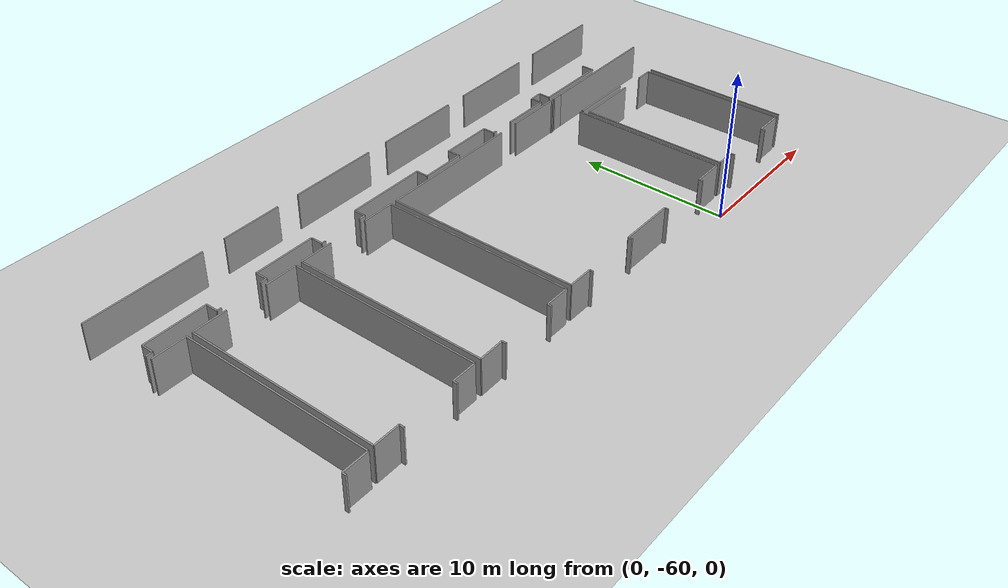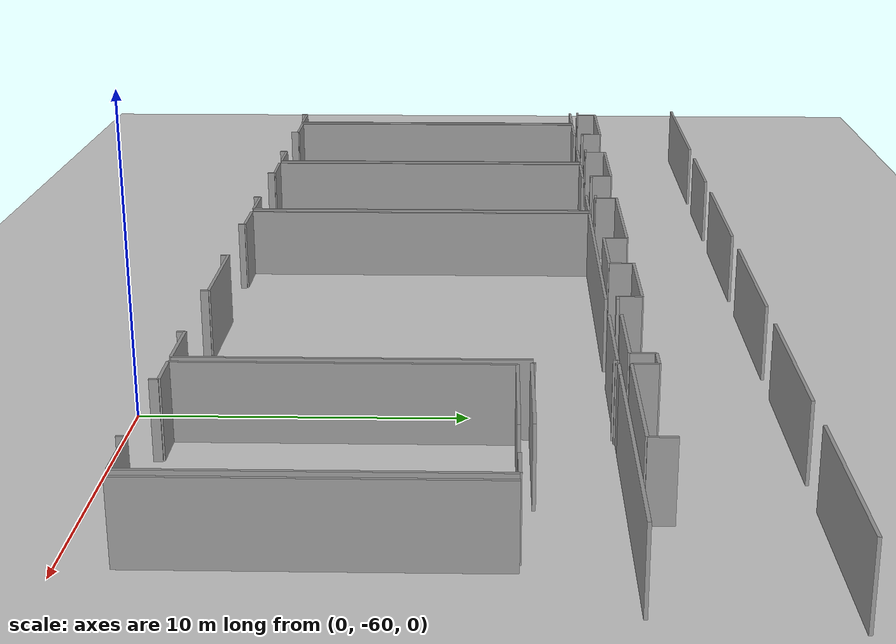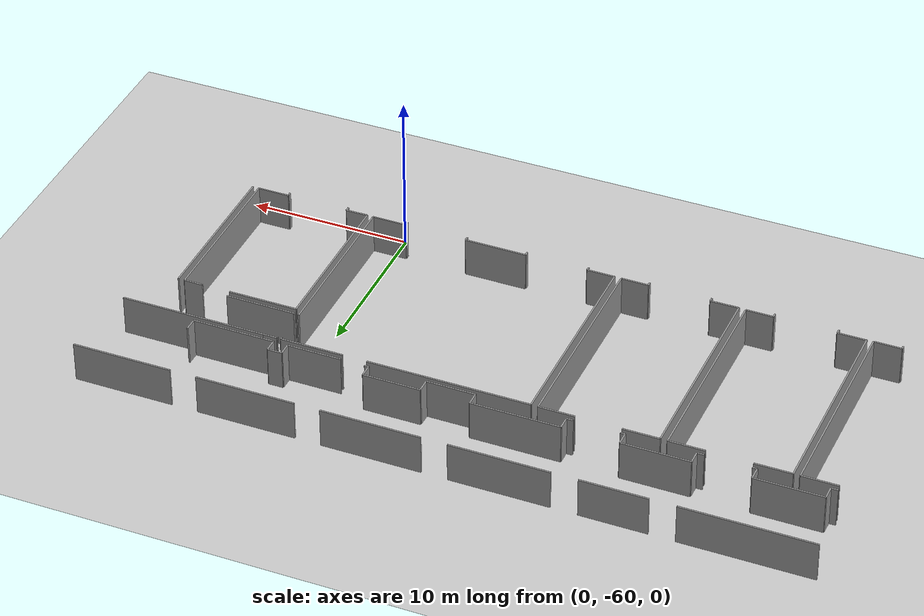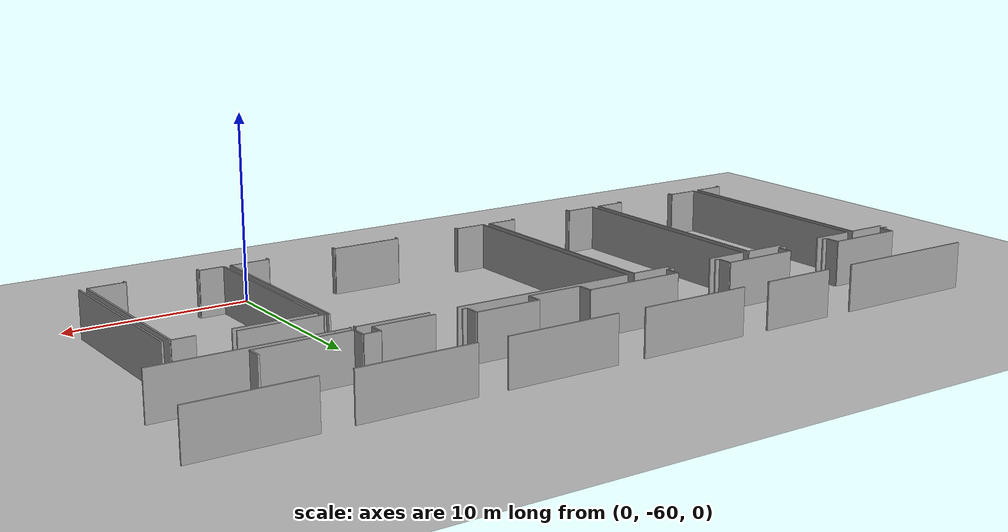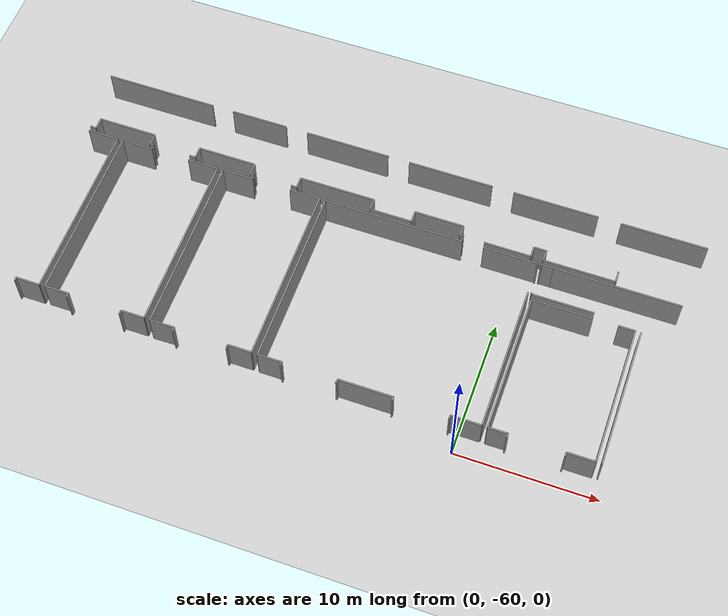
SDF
<sdf version="1.6">
 <world name="default">
  <model name="ground_plane">
   <static>1</static>
   <link name="link">
    <collision name="collision">
     <geometry><plane><normal>0 0 1</normal><size>100 100</size></plane></geometry>
     <surface><friction><ode><mu>100</mu><mu2>50</mu2></ode></friction></surface>
    </collision>
    <visual name="visual">
     <cast_shadows>0</cast_shadows>
     <geometry><plane><normal>0 0 1</normal><size>100 100</size></plane></geometry>
     <material>
      <script><uri>file://media/materials/scripts/gazebo.material</uri><name>Gazebo/Grey</name></script>
     </material>
    </visual>
   </link>
  </model>
  <model name="0510035520_A_40_1_103">
   <static>1</static>
   <link name="Wall_683">
    <collision name="Wall_683_Collision">
     <geometry><box><size>10.0286165697 0.1 2.5</size></box></geometry>
     <pose>5.01430828485 0 1.25 0 0 0</pose>
    </collision>
    <visual name="Wall_683_Visual">
     <pose>5.01430828485 0 1.25 0 0 0</pose>
     <geometry><box><size>10.0286165697 0.1 2.5</size></box></geometry>
     <material>
      <script><uri>file://media/materials/scripts/gazebo.material</uri><name>Gazebo/Grey</name></script>
      <ambient>1 1 1 1</ambient>
     </material>
    </visual>
    <pose>121.647451476 -127.235233279 0 0 0 1.57079632679</pose>
   </link>
   <link name="Wall_692">
    <collision name="Wall_692_Collision">
     <geometry><box><size>10.0169415169 0.1 2.5</size></box></geometry>
     <pose>5.00847075843 0 1.25 0 0 0</pose>
    </collision>
    <visual name="Wall_692_Visual">
     <pose>5.00847075843 0 1.25 0 0 0</pose>
     <geometry><box><size>10.0169415169 0.1 2.5</size></box></geometry>
     <material>
      <script><uri>file://media/materials/scripts/gazebo.material</uri><name>Gazebo/Grey</name></script>
      <ambient>1 1 1 1</ambient>
     </material>
    </visual>
    <pose>114.058413335 -127.230918586 0 0 0 1.57079632679</pose>
   </link>
   <link name="Wall_693">
    <collision name="Wall_693_Collision">
     <geometry><box><size>4.28931288507 0.1 2.5</size></box></geometry>
     <pose>2.14465644254 0 1.25 0 0 0</pose>
    </collision>
    <visual name="Wall_693_Visual">
     <pose>2.14465644254 0 1.25 0 0 0</pose>
     <geometry><box><size>4.28931288507 0.1 2.5</size></box></geometry>
     <material>
      <script><uri>file://media/materials/scripts/gazebo.material</uri><name>Gazebo/Grey</name></script>
      <ambient>1 1 1 1</ambient>
     </material>
    </visual>
    <pose>114.058413335 -117.213977069 0 0 0 0.0</pose>
   </link>
   <link name="Wall_694">
    <collision name="Wall_694_Collision">
     <geometry><box><size>1.17004333729 0.1 2.5</size></box></geometry>
     <pose>0.585021668644 0 1.25 0 0 0</pose>
    </collision>
    <visual name="Wall_694_Visual">
     <pose>0.585021668644 0 1.25 0 0 0</pose>
     <geometry><box><size>1.17004333729 0.1 2.5</size></box></geometry>
     <material>
      <script><uri>file://media/materials/scripts/gazebo.material</uri><name>Gazebo/Grey</name></script>
      <ambient>1 1 1 1</ambient>
     </material>
    </visual>
    <pose>120.084771036 -117.213977069 0 0 0 0.0</pose>
   </link>
   <link name="Wall_695">
    <collision name="Wall_695_Collision">
     <geometry><box><size>10.0169415169 0.1 2.5</size></box></geometry>
     <pose>5.00847075843 0 1.25 0 0 0</pose>
    </collision>
    <visual name="Wall_695_Visual">
     <pose>5.00847075843 0 1.25 0 0 0</pose>
     <geometry><box><size>10.0169415169 0.1 2.5</size></box></geometry>
     <material>
      <script><uri>file://media/materials/scripts/gazebo.material</uri><name>Gazebo/Grey</name></script>
      <ambient>1 1 1 1</ambient>
     </material>
    </visual>
    <pose>121.254814373 -117.213977069 0 0 0 -1.57079632679</pose>
   </link>
   <link name="Wall_696">
    <collision name="Wall_696_Collision">
     <geometry><box><size>1.96470834576 0.1 2.5</size></box></geometry>
     <pose>0.98235417288 0 1.25 0 0 0</pose>
    </collision>
    <visual name="Wall_696_Visual">
     <pose>0.98235417288 0 1.25 0 0 0</pose>
     <geometry><box><size>1.96470834576 0.1 2.5</size></box></geometry>
     <material>
      <script><uri>file://media/materials/scripts/gazebo.material</uri><name>Gazebo/Grey</name></script>
      <ambient>1 1 1 1</ambient>
     </material>
    </visual>
    <pose>121.254814373 -127.230918586 0 0 0 3.14159265359</pose>
   </link>
   <link name="Wall_697">
    <collision name="Wall_697_Collision">
     <geometry><box><size>0.261927272035 0.1 2.5</size></box></geometry>
     <pose>0.130963636018 0 1.25 0 0 0</pose>
    </collision>
    <visual name="Wall_697_Visual">
     <pose>0.130963636018 0 1.25 0 0 0</pose>
     <geometry><box><size>0.261927272035 0.1 2.5</size></box></geometry>
     <material>
      <script><uri>file://media/materials/scripts/gazebo.material</uri><name>Gazebo/Grey</name></script>
      <ambient>1 1 1 1</ambient>
     </material>
    </visual>
    <pose>119.290106027 -127.230918586 0 0 0 -1.57079632679</pose>
   </link>
   <link name="Wall_698">
    <collision name="Wall_698_Collision">
     <geometry><box><size>0.278170823789 0.1 2.5</size></box></geometry>
     <pose>0.139085411895 0 1.25 0 0 0</pose>
    </collision>
    <visual name="Wall_698_Visual">
     <pose>0.139085411895 0 1.25 0 0 0</pose>
     <geometry><box><size>0.278170823789 0.1 2.5</size></box></geometry>
     <material>
      <script><uri>file://media/materials/scripts/gazebo.material</uri><name>Gazebo/Grey</name></script>
      <ambient>1 1 1 1</ambient>
     </material>
    </visual>
    <pose>115.41678035 -127.492845858 0 0 0 1.57079632679</pose>
   </link>
   <link name="Wall_699">
    <collision name="Wall_699_Collision">
     <geometry><box><size>1.35846413335 0.1 2.5</size></box></geometry>
     <pose>0.679232066676 0 1.25 0 0 0</pose>
    </collision>
    <visual name="Wall_699_Visual">
     <pose>0.679232066676 0 1.25 0 0 0</pose>
     <geometry><box><size>1.35846413335 0.1 2.5</size></box></geometry>
     <material>
      <script><uri>file://media/materials/scripts/gazebo.material</uri><name>Gazebo/Grey</name></script>
      <ambient>1 1 1 1</ambient>
     </material>
    </visual>
    <pose>115.41678035 -127.214675034 0 0 0 -3.12963507705</pose>
   </link>
   <link name="Wall_700">
    <collision name="Wall_700_Collision">
     <geometry><box><size>9.00527280918 0.1 2.5</size></box></geometry>
     <pose>4.50263640459 0 1.25 0 0 0</pose>
    </collision>
    <visual name="Wall_700_Visual">
     <pose>4.50263640459 0 1.25 0 0 0</pose>
     <geometry><box><size>9.00527280918 0.1 2.5</size></box></geometry>
     <material>
      <script><uri>file://media/materials/scripts/gazebo.material</uri><name>Gazebo/Grey</name></script>
      <ambient>1 1 1 1</ambient>
     </material>
    </visual>
    <pose>114.766530669 -114.326685744 0 0 0 0.0</pose>
   </link>
   <link name="Wall_705">
    <collision name="Wall_705_Collision">
     <geometry><box><size>4.37433772628 0.1 2.5</size></box></geometry>
     <pose>2.18716886314 0 1.25 0 0 0</pose>
    </collision>
    <visual name="Wall_705_Visual">
     <pose>2.18716886314 0 1.25 0 0 0</pose>
     <geometry><box><size>4.37433772628 0.1 2.5</size></box></geometry>
     <material>
      <script><uri>file://media/materials/scripts/gazebo.material</uri><name>Gazebo/Grey</name></script>
      <ambient>1 1 1 1</ambient>
     </material>
    </visual>
    <pose>118.30940159 -116.802812165 0 0 0 3.14159265359</pose>
   </link>
   <link name="Wall_706">
    <collision name="Wall_706_Collision">
     <geometry><box><size>0.108374946859 0.1 2.5</size></box></geometry>
     <pose>0.0541874734297 0 1.25 0 0 0</pose>
    </collision>
    <visual name="Wall_706_Visual">
     <pose>0.0541874734297 0 1.25 0 0 0</pose>
     <geometry><box><size>0.108374946859 0.1 2.5</size></box></geometry>
     <material>
      <script><uri>file://media/materials/scripts/gazebo.material</uri><name>Gazebo/Grey</name></script>
      <ambient>1 1 1 1</ambient>
     </material>
    </visual>
    <pose>113.935063864 -116.802812165 0 0 0 1.57079632679</pose>
   </link>
   <link name="Wall_707">
    <collision name="Wall_707_Collision">
     <geometry><box><size>0.0982227270132 0.1 2.5</size></box></geometry>
     <pose>0.0491113635066 0 1.25 0 0 0</pose>
    </collision>
    <visual name="Wall_707_Visual">
     <pose>0.0491113635066 0 1.25 0 0 0</pose>
     <geometry><box><size>0.0982227270132 0.1 2.5</size></box></geometry>
     <material>
      <script><uri>file://media/materials/scripts/gazebo.material</uri><name>Gazebo/Grey</name></script>
      <ambient>1 1 1 1</ambient>
     </material>
    </visual>
    <pose>113.935063864 -114.421862805 0 0 0 1.57079632679</pose>
   </link>
   <link name="Wall_708">
    <collision name="Wall_708_Collision">
     <geometry><box><size>0.831472383538 0.1 2.5</size></box></geometry>
     <pose>0.415736191769 0 1.25 0 0 0</pose>
    </collision>
    <visual name="Wall_708_Visual">
     <pose>0.415736191769 0 1.25 0 0 0</pose>
     <geometry><box><size>0.831472383538 0.1 2.5</size></box></geometry>
     <material>
      <script><uri>file://media/materials/scripts/gazebo.material</uri><name>Gazebo/Grey</name></script>
      <ambient>1 1 1 1</ambient>
     </material>
    </visual>
    <pose>113.935063864 -114.323640078 0 0 0 -0.00366298728023</pose>
   </link>
   <link name="Wall_709">
    <collision name="Wall_709_Collision">
     <geometry><box><size>12.914385061 0.1 2.5</size></box></geometry>
     <pose>6.4571925305 0 1.25 0 0 0</pose>
    </collision>
    <visual name="Wall_709_Visual">
     <pose>6.4571925305 0 1.25 0 0 0</pose>
     <geometry><box><size>12.914385061 0.1 2.5</size></box></geometry>
     <material>
      <script><uri>file://media/materials/scripts/gazebo.material</uri><name>Gazebo/Grey</name></script>
      <ambient>1 1 1 1</ambient>
     </material>
    </visual>
    <pose>98.199630713 -127.249700192 0 0 0 1.57079632679</pose>
   </link>
   <link name="Wall_710">
    <collision name="Wall_710_Collision">
     <geometry><box><size>10.0788700579 0.1 2.5</size></box></geometry>
     <pose>5.03943502897 0 1.25 0 0 0</pose>
    </collision>
    <visual name="Wall_710_Visual">
     <pose>5.03943502897 0 1.25 0 0 0</pose>
     <geometry><box><size>10.0788700579 0.1 2.5</size></box></geometry>
     <material>
      <script><uri>file://media/materials/scripts/gazebo.material</uri><name>Gazebo/Grey</name></script>
      <ambient>1 1 1 1</ambient>
     </material>
    </visual>
    <pose>98.199630713 -114.335315131 0 0 0 0.0</pose>
   </link>
   <link name="Wall_711">
    <collision name="Wall_711_Collision">
     <geometry><box><size>3.89286870007 0.1 2.5</size></box></geometry>
     <pose>1.94643435004 0 1.25 0 0 0</pose>
    </collision>
    <visual name="Wall_711_Visual">
     <pose>1.94643435004 0 1.25 0 0 0</pose>
     <geometry><box><size>3.89286870007 0.1 2.5</size></box></geometry>
     <material>
      <script><uri>file://media/materials/scripts/gazebo.material</uri><name>Gazebo/Grey</name></script>
      <ambient>1 1 1 1</ambient>
     </material>
    </visual>
    <pose>109.784074974 -114.335315131 0 0 0 0.0</pose>
   </link>
   <link name="Wall_712">
    <collision name="Wall_712_Collision">
     <geometry><box><size>0.132740274491 0.1 2.5</size></box></geometry>
     <pose>0.0663701372453 0 1.25 0 0 0</pose>
    </collision>
    <visual name="Wall_712_Visual">
     <pose>0.0663701372453 0 1.25 0 0 0</pose>
     <geometry><box><size>0.132740274491 0.1 2.5</size></box></geometry>
     <material>
      <script><uri>file://media/materials/scripts/gazebo.material</uri><name>Gazebo/Grey</name></script>
      <ambient>1 1 1 1</ambient>
     </material>
    </visual>
    <pose>113.676943674 -114.335315131 0 0 0 -1.57079632679</pose>
   </link>
   <link name="Wall_713">
    <collision name="Wall_713_Collision">
     <geometry><box><size>10.4745528264 0.1 2.5</size></box></geometry>
     <pose>5.23727641322 0 1.25 0 0 0</pose>
    </collision>
    <visual name="Wall_713_Visual">
     <pose>5.23727641322 0 1.25 0 0 0</pose>
     <geometry><box><size>10.4745528264 0.1 2.5</size></box></geometry>
     <material>
      <script><uri>file://media/materials/scripts/gazebo.material</uri><name>Gazebo/Grey</name></script>
      <ambient>1 1 1 1</ambient>
     </material>
    </visual>
    <pose>113.676943674 -116.749259205 0 0 0 -1.57079632679</pose>
   </link>
   <link name="Wall_714">
    <collision name="Wall_714_Collision">
     <geometry><box><size>2.12993572376 0.1 2.5</size></box></geometry>
     <pose>1.06496786188 0 1.25 0 0 0</pose>
    </collision>
    <visual name="Wall_714_Visual">
     <pose>1.06496786188 0 1.25 0 0 0</pose>
     <geometry><box><size>2.12993572376 0.1 2.5</size></box></geometry>
     <material>
      <script><uri>file://media/materials/scripts/gazebo.material</uri><name>Gazebo/Grey</name></script>
      <ambient>1 1 1 1</ambient>
     </material>
    </visual>
    <pose>113.676943674 -127.223812032 0 0 0 3.14159265359</pose>
   </link>
   <link name="Wall_715">
    <collision name="Wall_715_Collision">
     <geometry><box><size>0.256597356616 0.1 2.5</size></box></geometry>
     <pose>0.128298678308 0 1.25 0 0 0</pose>
    </collision>
    <visual name="Wall_715_Visual">
     <pose>0.128298678308 0 1.25 0 0 0</pose>
     <geometry><box><size>0.256597356616 0.1 2.5</size></box></geometry>
     <material>
      <script><uri>file://media/materials/scripts/gazebo.material</uri><name>Gazebo/Grey</name></script>
      <ambient>1 1 1 1</ambient>
     </material>
    </visual>
    <pose>111.54700795 -127.223812032 0 0 0 -1.57079632679</pose>
   </link>
   <link name="Wall_716">
    <collision name="Wall_716_Collision">
     <geometry><box><size>0.266749576462 0.1 2.5</size></box></geometry>
     <pose>0.133374788231 0 1.25 0 0 0</pose>
    </collision>
    <visual name="Wall_716_Visual">
     <pose>0.133374788231 0 1.25 0 0 0</pose>
     <geometry><box><size>0.266749576462 0.1 2.5</size></box></geometry>
     <material>
      <script><uri>file://media/materials/scripts/gazebo.material</uri><name>Gazebo/Grey</name></script>
      <ambient>1 1 1 1</ambient>
     </material>
    </visual>
    <pose>107.658200138 -127.480409388 0 0 0 1.57079632679</pose>
   </link>
   <link name="Wall_717">
    <collision name="Wall_717_Collision">
     <geometry><box><size>3.85200601519 0.1 2.5</size></box></geometry>
     <pose>1.9260030076 0 1.25 0 0 0</pose>
    </collision>
    <visual name="Wall_717_Visual">
     <pose>1.9260030076 0 1.25 0 0 0</pose>
     <geometry><box><size>3.85200601519 0.1 2.5</size></box></geometry>
     <material>
      <script><uri>file://media/materials/scripts/gazebo.material</uri><name>Gazebo/Grey</name></script>
      <ambient>1 1 1 1</ambient>
     </material>
    </visual>
    <pose>107.658200138 -127.213659812 0 0 0 3.14159265359</pose>
   </link>
   <link name="Wall_718">
    <collision name="Wall_718_Collision">
     <geometry><box><size>0.271825686385 0.1 2.5</size></box></geometry>
     <pose>0.135912843193 0 1.25 0 0 0</pose>
    </collision>
    <visual name="Wall_718_Visual">
     <pose>0.135912843193 0 1.25 0 0 0</pose>
     <geometry><box><size>0.271825686385 0.1 2.5</size></box></geometry>
     <material>
      <script><uri>file://media/materials/scripts/gazebo.material</uri><name>Gazebo/Grey</name></script>
      <ambient>1 1 1 1</ambient>
     </material>
    </visual>
    <pose>103.806194123 -127.213659812 0 0 0 -1.57079632679</pose>
   </link>
   <link name="Wall_719">
    <collision name="Wall_719_Collision">
     <geometry><box><size>0.232232028985 0.1 2.5</size></box></geometry>
     <pose>0.116116014492 0 1.25 0 0 0</pose>
    </collision>
    <visual name="Wall_719_Visual">
     <pose>0.116116014492 0 1.25 0 0 0</pose>
     <geometry><box><size>0.232232028985 0.1 2.5</size></box></geometry>
     <material>
      <script><uri>file://media/materials/scripts/gazebo.material</uri><name>Gazebo/Grey</name></script>
      <ambient>1 1 1 1</ambient>
     </material>
    </visual>
    <pose>99.9232238374 -127.485485498 0 0 0 1.57079632679</pose>
   </link>
   <link name="Wall_720">
    <collision name="Wall_720_Collision">
     <geometry><box><size>1.72359678704 0.1 2.5</size></box></geometry>
     <pose>0.861798393519 0 1.25 0 0 0</pose>
    </collision>
    <visual name="Wall_720_Visual">
     <pose>0.861798393519 0 1.25 0 0 0</pose>
     <geometry><box><size>1.72359678704 0.1 2.5</size></box></geometry>
     <material>
      <script><uri>file://media/materials/scripts/gazebo.material</uri><name>Gazebo/Grey</name></script>
      <ambient>1 1 1 1</ambient>
     </material>
    </visual>
    <pose>99.9232238374 -127.253253469 0 0 0 3.13953110446</pose>
   </link>
   <link name="Wall_721">
    <collision name="Wall_721_Collision">
     <geometry><box><size>12.9237758644 0.1 2.5</size></box></geometry>
     <pose>6.46188793218 0 1.25 0 0 0</pose>
    </collision>
    <visual name="Wall_721_Visual">
     <pose>6.46188793218 0 1.25 0 0 0</pose>
     <geometry><box><size>12.9237758644 0.1 2.5</size></box></geometry>
     <material>
      <script><uri>file://media/materials/scripts/gazebo.material</uri><name>Gazebo/Grey</name></script>
      <ambient>1 1 1 1</ambient>
     </material>
    </visual>
    <pose>90.470238133 -127.244624082 0 0 0 1.57079632679</pose>
   </link>
   <link name="Wall_722">
    <collision name="Wall_722_Collision">
     <geometry><box><size>2.27511246756 0.1 2.5</size></box></geometry>
     <pose>1.13755623378 0 1.25 0 0 0</pose>
    </collision>
    <visual name="Wall_722_Visual">
     <pose>1.13755623378 0 1.25 0 0 0</pose>
     <geometry><box><size>2.27511246756 0.1 2.5</size></box></geometry>
     <material>
      <script><uri>file://media/materials/scripts/gazebo.material</uri><name>Gazebo/Grey</name></script>
      <ambient>1 1 1 1</ambient>
     </material>
    </visual>
    <pose>90.470238133 -114.320848218 0 0 0 0.0</pose>
   </link>
   <link name="Wall_723">
    <collision name="Wall_723_Collision">
     <geometry><box><size>2.22714322879 0.1 2.5</size></box></geometry>
     <pose>1.11357161439 0 1.25 0 0 0</pose>
    </collision>
    <visual name="Wall_723_Visual">
     <pose>1.11357161439 0 1.25 0 0 0</pose>
     <geometry><box><size>2.22714322879 0.1 2.5</size></box></geometry>
     <material>
      <script><uri>file://media/materials/scripts/gazebo.material</uri><name>Gazebo/Grey</name></script>
      <ambient>1 1 1 1</ambient>
     </material>
    </visual>
    <pose>95.5427947792 -114.320848218 0 0 0 0.0</pose>
   </link>
   <link name="Wall_724">
    <collision name="Wall_724_Collision">
     <geometry><box><size>12.9214916149 0.1 2.5</size></box></geometry>
     <pose>6.46074580745 0 1.25 0 0 0</pose>
    </collision>
    <visual name="Wall_724_Visual">
     <pose>6.46074580745 0 1.25 0 0 0</pose>
     <geometry><box><size>12.9214916149 0.1 2.5</size></box></geometry>
     <material>
      <script><uri>file://media/materials/scripts/gazebo.material</uri><name>Gazebo/Grey</name></script>
      <ambient>1 1 1 1</ambient>
     </material>
    </visual>
    <pose>97.769938008 -114.320848218 0 0 0 -1.57079632679</pose>
   </link>
   <link name="Wall_725">
    <collision name="Wall_725_Collision">
     <geometry><box><size>1.6913598264 0.1 2.5</size></box></geometry>
     <pose>0.845679913199 0 1.25 0 0 0</pose>
    </collision>
    <visual name="Wall_725_Visual">
     <pose>0.845679913199 0 1.25 0 0 0</pose>
     <geometry><box><size>1.6913598264 0.1 2.5</size></box></geometry>
     <material>
      <script><uri>file://media/materials/scripts/gazebo.material</uri><name>Gazebo/Grey</name></script>
      <ambient>1 1 1 1</ambient>
     </material>
    </visual>
    <pose>97.769938008 -127.242339833 0 0 0 3.14159265359</pose>
   </link>
   <link name="Wall_726">
    <collision name="Wall_726_Collision">
     <geometry><box><size>0.252536468677 0.1 2.5</size></box></geometry>
     <pose>0.126268234339 0 1.25 0 0 0</pose>
    </collision>
    <visual name="Wall_726_Visual">
     <pose>0.126268234339 0 1.25 0 0 0</pose>
     <geometry><box><size>0.252536468677 0.1 2.5</size></box></geometry>
     <material>
      <script><uri>file://media/materials/scripts/gazebo.material</uri><name>Gazebo/Grey</name></script>
      <ambient>1 1 1 1</ambient>
     </material>
    </visual>
    <pose>96.0785781816 -127.242339833 0 0 0 -1.57079632679</pose>
   </link>
   <link name="Wall_727">
    <collision name="Wall_727_Collision">
     <geometry><box><size>0.281216489743 0.1 2.5</size></box></geometry>
     <pose>0.140608244872 0 1.25 0 0 0</pose>
    </collision>
    <visual name="Wall_727_Visual">
     <pose>0.140608244872 0 1.25 0 0 0</pose>
     <geometry><box><size>0.281216489743 0.1 2.5</size></box></geometry>
     <material>
      <script><uri>file://media/materials/scripts/gazebo.material</uri><name>Gazebo/Grey</name></script>
      <ambient>1 1 1 1</ambient>
     </material>
    </visual>
    <pose>92.218704196 -127.494876302 0 0 0 1.57079632679</pose>
   </link>
   <link name="Wall_728">
    <collision name="Wall_728_Collision">
     <geometry><box><size>1.74874022074 0.1 2.5</size></box></geometry>
     <pose>0.874370110369 0 1.25 0 0 0</pose>
    </collision>
    <visual name="Wall_728_Visual">
     <pose>0.874370110369 0 1.25 0 0 0</pose>
     <geometry><box><size>1.74874022074 0.1 2.5</size></box></geometry>
     <material>
      <script><uri>file://media/materials/scripts/gazebo.material</uri><name>Gazebo/Grey</name></script>
      <ambient>1 1 1 1</ambient>
     </material>
    </visual>
    <pose>92.218704196 -127.213659812 0 0 0 -3.12388511281</pose>
   </link>
   <link name="Wall_729">
    <collision name="Wall_729_Collision">
     <geometry><box><size>12.8638777673 0.1 2.5</size></box></geometry>
     <pose>6.43193888364 0 1.25 0 0 0</pose>
    </collision>
    <visual name="Wall_729_Visual">
     <pose>6.43193888364 0 1.25 0 0 0</pose>
     <geometry><box><size>12.8638777673 0.1 2.5</size></box></geometry>
     <material>
      <script><uri>file://media/materials/scripts/gazebo.material</uri><name>Gazebo/Grey</name></script>
      <ambient>1 1 1 1</ambient>
     </material>
    </visual>
    <pose>82.709627477 -127.191832539 0 0 0 1.57079632679</pose>
   </link>
   <link name="Wall_730">
    <collision name="Wall_730_Collision">
     <geometry><box><size>2.29440168527 0.1 2.5</size></box></geometry>
     <pose>1.14720084263 0 1.25 0 0 0</pose>
    </collision>
    <visual name="Wall_730_Visual">
     <pose>1.14720084263 0 1.25 0 0 0</pose>
     <geometry><box><size>2.29440168527 0.1 2.5</size></box></geometry>
     <material>
      <script><uri>file://media/materials/scripts/gazebo.material</uri><name>Gazebo/Grey</name></script>
      <ambient>1 1 1 1</ambient>
     </material>
    </visual>
    <pose>82.709627477 -114.327954772 0 0 0 0.0</pose>
   </link>
   <link name="Wall_731">
    <collision name="Wall_731_Collision">
     <geometry><box><size>2.23856447611 0.1 2.5</size></box></geometry>
     <pose>1.11928223806 0 1.25 0 0 0</pose>
    </collision>
    <visual name="Wall_731_Visual">
     <pose>1.11928223806 0 1.25 0 0 0</pose>
     <geometry><box><size>2.23856447611 0.1 2.5</size></box></geometry>
     <material>
      <script><uri>file://media/materials/scripts/gazebo.material</uri><name>Gazebo/Grey</name></script>
      <ambient>1 1 1 1</ambient>
     </material>
    </visual>
    <pose>87.8032499794 -114.327954772 0 0 0 0.0</pose>
   </link>
   <link name="Wall_732">
    <collision name="Wall_732_Collision">
     <geometry><box><size>12.8839284015 0.1 2.5</size></box></geometry>
     <pose>6.44196420073 0 1.25 0 0 0</pose>
    </collision>
    <visual name="Wall_732_Visual">
     <pose>6.44196420073 0 1.25 0 0 0</pose>
     <geometry><box><size>12.8839284015 0.1 2.5</size></box></geometry>
     <material>
      <script><uri>file://media/materials/scripts/gazebo.material</uri><name>Gazebo/Grey</name></script>
      <ambient>1 1 1 1</ambient>
     </material>
    </visual>
    <pose>90.0418144555 -114.327954772 0 0 0 -1.57079632679</pose>
   </link>
   <link name="Wall_733">
    <collision name="Wall_733_Collision">
     <geometry><box><size>1.69288265937 0.1 2.5</size></box></geometry>
     <pose>0.846441329687 0 1.25 0 0 0</pose>
    </collision>
    <visual name="Wall_733_Visual">
     <pose>0.846441329687 0 1.25 0 0 0</pose>
     <geometry><box><size>1.69288265937 0.1 2.5</size></box></geometry>
     <material>
      <script><uri>file://media/materials/scripts/gazebo.material</uri><name>Gazebo/Grey</name></script>
      <ambient>1 1 1 1</ambient>
     </material>
    </visual>
    <pose>90.0418144555 -127.211883173 0 0 0 3.14159265359</pose>
   </link>
   <link name="Wall_734">
    <collision name="Wall_734_Collision">
     <geometry><box><size>0.281977906232 0.1 2.5</size></box></geometry>
     <pose>0.140988953116 0 1.25 0 0 0</pose>
    </collision>
    <visual name="Wall_734_Visual">
     <pose>0.140988953116 0 1.25 0 0 0</pose>
     <geometry><box><size>0.281977906232 0.1 2.5</size></box></geometry>
     <material>
      <script><uri>file://media/materials/scripts/gazebo.material</uri><name>Gazebo/Grey</name></script>
      <ambient>1 1 1 1</ambient>
     </material>
    </visual>
    <pose>88.3489317961 -127.211883173 0 0 0 -1.57079632679</pose>
   </link>
   <link name="Wall_735">
    <collision name="Wall_735_Collision">
     <geometry><box><size>0.306850844855 0.1 2.5</size></box></geometry>
     <pose>0.153425422428 0 1.25 0 0 0</pose>
    </collision>
    <visual name="Wall_735_Visual">
     <pose>0.153425422428 0 1.25 0 0 0</pose>
     <geometry><box><size>0.306850844855 0.1 2.5</size></box></geometry>
     <material>
      <script><uri>file://media/materials/scripts/gazebo.material</uri><name>Gazebo/Grey</name></script>
      <ambient>1 1 1 1</ambient>
     </material>
    </visual>
    <pose>84.4659615104 -127.49386108 0 0 0 1.57079632679</pose>
   </link>
   <link name="Wall_736">
    <collision name="Wall_736_Collision">
     <geometry><box><size>1.75634065362 0.1 2.5</size></box></geometry>
     <pose>0.878170326808 0 1.25 0 0 0</pose>
    </collision>
    <visual name="Wall_736_Visual">
     <pose>0.878170326808 0 1.25 0 0 0</pose>
     <geometry><box><size>1.75634065362 0.1 2.5</size></box></geometry>
     <material>
      <script><uri>file://media/materials/scripts/gazebo.material</uri><name>Gazebo/Grey</name></script>
      <ambient>1 1 1 1</ambient>
     </material>
    </visual>
    <pose>84.4659615104 -127.187010235 0 0 0 -3.13884699575</pose>
   </link>
   <link name="Wall_739">
    <collision name="Wall_739_Collision">
     <geometry><box><size>2.2591227213 0.1 2.5</size></box></geometry>
     <pose>1.12956136065 0 1.25 0 0 0</pose>
    </collision>
    <visual name="Wall_739_Visual">
     <pose>1.12956136065 0 1.25 0 0 0</pose>
     <geometry><box><size>2.2591227213 0.1 2.5</size></box></geometry>
     <material>
      <script><uri>file://media/materials/scripts/gazebo.material</uri><name>Gazebo/Grey</name></script>
      <ambient>1 1 1 1</ambient>
     </material>
    </visual>
    <pose>80.0489844608 -114.331508049 0 0 0 0.0</pose>
   </link>
   <link name="Wall_740">
    <collision name="Wall_740_Collision">
     <geometry><box><size>12.9049942577 0.1 2.5</size></box></geometry>
     <pose>6.45249712883 0 1.25 0 0 0</pose>
    </collision>
    <visual name="Wall_740_Visual">
     <pose>6.45249712883 0 1.25 0 0 0</pose>
     <geometry><box><size>12.9049942577 0.1 2.5</size></box></geometry>
     <material>
      <script><uri>file://media/materials/scripts/gazebo.material</uri><name>Gazebo/Grey</name></script>
      <ambient>1 1 1 1</ambient>
     </material>
    </visual>
    <pose>82.3081071821 -114.331508049 0 0 0 -1.57079632679</pose>
   </link>
   <link name="Wall_741">
    <collision name="Wall_741_Collision">
     <geometry><box><size>1.71318709907 0.1 2.5</size></box></geometry>
     <pose>0.856593549533 0 1.25 0 0 0</pose>
    </collision>
    <visual name="Wall_741_Visual">
     <pose>0.856593549533 0 1.25 0 0 0</pose>
     <geometry><box><size>1.71318709907 0.1 2.5</size></box></geometry>
     <material>
      <script><uri>file://media/materials/scripts/gazebo.material</uri><name>Gazebo/Grey</name></script>
      <ambient>1 1 1 1</ambient>
     </material>
    </visual>
    <pose>82.3081071821 -127.236502306 0 0 0 3.14159265359</pose>
   </link>
   <link name="Wall_742">
    <collision name="Wall_742_Collision">
     <geometry><box><size>0.245429914785 0.1 2.5</size></box></geometry>
     <pose>0.122714957392 0 1.25 0 0 0</pose>
    </collision>
    <visual name="Wall_742_Visual">
     <pose>0.122714957392 0 1.25 0 0 0</pose>
     <geometry><box><size>0.245429914785 0.1 2.5</size></box></geometry>
     <material>
      <script><uri>file://media/materials/scripts/gazebo.material</uri><name>Gazebo/Grey</name></script>
      <ambient>1 1 1 1</ambient>
     </material>
    </visual>
    <pose>80.594920083 -127.236502306 0 0 0 -1.57079632679</pose>
   </link>
   <link name="Wall_800">
    <collision name="Wall_800_Collision">
     <geometry><box><size>8.11796879461 0.1 2.5</size></box></geometry>
     <pose>4.05898439731 0 1.25 0 0 0</pose>
    </collision>
    <visual name="Wall_800_Visual">
     <pose>4.05898439731 0 1.25 0 0 0</pose>
     <geometry><box><size>8.11796879461 0.1 2.5</size></box></geometry>
     <material>
      <script><uri>file://media/materials/scripts/gazebo.material</uri><name>Gazebo/Grey</name></script>
      <ambient>1 1 1 1</ambient>
     </material>
    </visual>
    <pose>79.5045716715 -109.299814087 0 0 0 0.0</pose>
   </link>
   <link name="Wall_801">
    <collision name="Wall_801_Collision">
     <geometry><box><size>4.13474533791 0.1 2.5</size></box></geometry>
     <pose>2.06737266896 0 1.25 0 0 0</pose>
    </collision>
    <visual name="Wall_801_Visual">
     <pose>2.06737266896 0 1.25 0 0 0</pose>
     <geometry><box><size>4.13474533791 0.1 2.5</size></box></geometry>
     <material>
      <script><uri>file://media/materials/scripts/gazebo.material</uri><name>Gazebo/Grey</name></script>
      <ambient>1 1 1 1</ambient>
     </material>
    </visual>
    <pose>89.217454204 -109.299814087 0 0 0 0.0</pose>
   </link>
   <link name="Wall_802">
    <collision name="Wall_802_Collision">
     <geometry><box><size>6.16138222473 0.1 2.5</size></box></geometry>
     <pose>3.08069111237 0 1.25 0 0 0</pose>
    </collision>
    <visual name="Wall_802_Visual">
     <pose>3.08069111237 0 1.25 0 0 0</pose>
     <geometry><box><size>6.16138222473 0.1 2.5</size></box></geometry>
     <material>
      <script><uri>file://media/materials/scripts/gazebo.material</uri><name>Gazebo/Grey</name></script>
      <ambient>1 1 1 1</ambient>
     </material>
    </visual>
    <pose>94.9674177194 -109.299814087 0 0 0 0.0</pose>
   </link>
   <link name="Wall_803">
    <collision name="Wall_803_Collision">
     <geometry><box><size>6.16595072366 0.1 2.5</size></box></geometry>
     <pose>3.08297536183 0 1.25 0 0 0</pose>
    </collision>
    <visual name="Wall_803_Visual">
     <pose>3.08297536183 0 1.25 0 0 0</pose>
     <geometry><box><size>6.16595072366 0.1 2.5</size></box></geometry>
     <material>
      <script><uri>file://media/materials/scripts/gazebo.material</uri><name>Gazebo/Grey</name></script>
      <ambient>1 1 1 1</ambient>
     </material>
    </visual>
    <pose>102.719398989 -109.299814087 0 0 0 0.0</pose>
   </link>
   <link name="Wall_804">
    <collision name="Wall_804_Collision">
     <geometry><box><size>6.13244839817 0.1 2.5</size></box></geometry>
     <pose>3.06622419909 0 1.25 0 0 0</pose>
    </collision>
    <visual name="Wall_804_Visual">
     <pose>3.06622419909 0 1.25 0 0 0</pose>
     <geometry><box><size>6.13244839817 0.1 2.5</size></box></geometry>
     <material>
      <script><uri>file://media/materials/scripts/gazebo.material</uri><name>Gazebo/Grey</name></script>
      <ambient>1 1 1 1</ambient>
     </material>
    </visual>
    <pose>110.464781315 -109.299814087 0 0 0 0.0</pose>
   </link>
   <link name="Wall_805">
    <collision name="Wall_805_Collision">
     <geometry><box><size>6.15300664336 0.1 2.5</size></box></geometry>
     <pose>3.07650332168 0 1.25 0 0 0</pose>
    </collision>
    <visual name="Wall_805_Visual">
     <pose>3.07650332168 0 1.25 0 0 0</pose>
     <geometry><box><size>6.15300664336 0.1 2.5</size></box></geometry>
     <material>
      <script><uri>file://media/materials/scripts/gazebo.material</uri><name>Gazebo/Grey</name></script>
      <ambient>1 1 1 1</ambient>
     </material>
    </visual>
    <pose>118.218031611 -109.299814087 0 0 0 0.0</pose>
   </link>
   <link name="Wall_814">
    <collision name="Wall_814_Collision">
     <geometry><box><size>0.81649228114 0.1 2.5</size></box></geometry>
     <pose>0.40824614057 0 1.25 0 0 0</pose>
    </collision>
    <visual name="Wall_814_Visual">
     <pose>0.40824614057 0 1.25 0 0 0</pose>
     <geometry><box><size>0.81649228114 0.1 2.5</size></box></geometry>
     <material>
      <script><uri>file://media/materials/scripts/gazebo.material</uri><name>Gazebo/Grey</name></script>
      <ambient>1 1 1 1</ambient>
     </material>
    </visual>
    <pose>119.039346197 -113.144967354 0 0 0 -1.57079632679</pose>
   </link>
   <link name="Wall_815">
    <collision name="Wall_815_Collision">
     <geometry><box><size>5.08956161446 0.1 2.5</size></box></geometry>
     <pose>2.54478080723 0 1.25 0 0 0</pose>
    </collision>
    <visual name="Wall_815_Visual">
     <pose>2.54478080723 0 1.25 0 0 0</pose>
     <geometry><box><size>5.08956161446 0.1 2.5</size></box></geometry>
     <material>
      <script><uri>file://media/materials/scripts/gazebo.material</uri><name>Gazebo/Grey</name></script>
      <ambient>1 1 1 1</ambient>
     </material>
    </visual>
    <pose>119.039346197 -113.961459635 0 0 0 3.14159265359</pose>
   </link>
   <link name="Wall_816">
    <collision name="Wall_816_Collision">
     <geometry><box><size>0.796949257936 0.1 2.5</size></box></geometry>
     <pose>0.398474628968 0 1.25 0 0 0</pose>
    </collision>
    <visual name="Wall_816_Visual">
     <pose>0.398474628968 0 1.25 0 0 0</pose>
     <geometry><box><size>0.796949257936 0.1 2.5</size></box></geometry>
     <material>
      <script><uri>file://media/materials/scripts/gazebo.material</uri><name>Gazebo/Grey</name></script>
      <ambient>1 1 1 1</ambient>
     </material>
    </visual>
    <pose>113.949784583 -113.961459635 0 0 0 1.57079632679</pose>
   </link>
   <link name="Wall_817">
    <collision name="Wall_817_Collision">
     <geometry><box><size>0.890857291515 0.1 2.5</size></box></geometry>
     <pose>0.445428645757 0 1.25 0 0 0</pose>
    </collision>
    <visual name="Wall_817_Visual">
     <pose>0.445428645757 0 1.25 0 0 0</pose>
     <geometry><box><size>0.890857291515 0.1 2.5</size></box></geometry>
     <material>
      <script><uri>file://media/materials/scripts/gazebo.material</uri><name>Gazebo/Grey</name></script>
      <ambient>1 1 1 1</ambient>
     </material>
    </visual>
    <pose>113.949784583 -113.164510377 0 0 0 3.14159265359</pose>
   </link>
   <link name="Wall_818">
    <collision name="Wall_818_Collision">
     <geometry><box><size>0.777913845724 0.1 2.5</size></box></geometry>
     <pose>0.388956922862 0 1.25 0 0 0</pose>
    </collision>
    <visual name="Wall_818_Visual">
     <pose>0.388956922862 0 1.25 0 0 0</pose>
     <geometry><box><size>0.777913845724 0.1 2.5</size></box></geometry>
     <material>
      <script><uri>file://media/materials/scripts/gazebo.material</uri><name>Gazebo/Grey</name></script>
      <ambient>1 1 1 1</ambient>
     </material>
    </visual>
    <pose>113.058927291 -113.164510377 0 0 0 -1.57079632679</pose>
   </link>
   <link name="Wall_819">
    <collision name="Wall_819_Collision">
     <geometry><box><size>3.33145094257 0.1 2.5</size></box></geometry>
     <pose>1.66572547129 0 1.25 0 0 0</pose>
    </collision>
    <visual name="Wall_819_Visual">
     <pose>1.66572547129 0 1.25 0 0 0</pose>
     <geometry><box><size>3.33145094257 0.1 2.5</size></box></geometry>
     <material>
      <script><uri>file://media/materials/scripts/gazebo.material</uri><name>Gazebo/Grey</name></script>
      <ambient>1 1 1 1</ambient>
     </material>
    </visual>
    <pose>113.058927291 -113.942424223 0 0 0 3.14159265359</pose>
   </link>
   <link name="Wall_820">
    <collision name="Wall_820_Collision">
     <geometry><box><size>0.268272409439 0.1 2.5</size></box></geometry>
     <pose>0.13413620472 0 1.25 0 0 0</pose>
    </collision>
    <visual name="Wall_820_Visual">
     <pose>0.13413620472 0 1.25 0 0 0</pose>
     <geometry><box><size>0.268272409439 0.1 2.5</size></box></geometry>
     <material>
      <script><uri>file://media/materials/scripts/gazebo.material</uri><name>Gazebo/Grey</name></script>
      <ambient>1 1 1 1</ambient>
     </material>
    </visual>
    <pose>108.243729418 -113.942424223 0 0 0 3.14159265359</pose>
   </link>
   <link name="Wall_821">
    <collision name="Wall_821_Collision">
     <geometry><box><size>0.797203063432 0.1 2.5</size></box></geometry>
     <pose>0.398601531716 0 1.25 0 0 0</pose>
    </collision>
    <visual name="Wall_821_Visual">
     <pose>0.398601531716 0 1.25 0 0 0</pose>
     <geometry><box><size>0.797203063432 0.1 2.5</size></box></geometry>
     <material>
      <script><uri>file://media/materials/scripts/gazebo.material</uri><name>Gazebo/Grey</name></script>
      <ambient>1 1 1 1</ambient>
     </material>
    </visual>
    <pose>107.975457009 -113.942424223 0 0 0 1.57079632679</pose>
   </link>
   <link name="Wall_822">
    <collision name="Wall_822_Collision">
     <geometry><box><size>3.53652578347 0.1 2.5</size></box></geometry>
     <pose>1.76826289173 0 1.25 0 0 0</pose>
    </collision>
    <visual name="Wall_822_Visual">
     <pose>1.76826289173 0 1.25 0 0 0</pose>
     <geometry><box><size>3.53652578347 0.1 2.5</size></box></geometry>
     <material>
      <script><uri>file://media/materials/scripts/gazebo.material</uri><name>Gazebo/Grey</name></script>
      <ambient>1 1 1 1</ambient>
     </material>
    </visual>
    <pose>107.975457009 -113.14522116 0 0 0 3.14159265359</pose>
   </link>
   <link name="Wall_823">
    <collision name="Wall_823_Collision">
     <geometry><box><size>0.83502008236 0.1 2.5</size></box></geometry>
     <pose>0.41751004118 0 1.25 0 0 0</pose>
    </collision>
    <visual name="Wall_823_Visual">
     <pose>0.41751004118 0 1.25 0 0 0</pose>
     <geometry><box><size>0.83502008236 0.1 2.5</size></box></geometry>
     <material>
      <script><uri>file://media/materials/scripts/gazebo.material</uri><name>Gazebo/Grey</name></script>
      <ambient>1 1 1 1</ambient>
     </material>
    </visual>
    <pose>104.438931225 -113.14522116 0 0 0 -1.57079632679</pose>
   </link>
   <link name="Wall_824">
    <collision name="Wall_824_Collision">
     <geometry><box><size>3.02409248672 0.1 2.5</size></box></geometry>
     <pose>1.51204624336 0 1.25 0 0 0</pose>
    </collision>
    <visual name="Wall_824_Visual">
     <pose>1.51204624336 0 1.25 0 0 0</pose>
     <geometry><box><size>3.02409248672 0.1 2.5</size></box></geometry>
     <material>
      <script><uri>file://media/materials/scripts/gazebo.material</uri><name>Gazebo/Grey</name></script>
      <ambient>1 1 1 1</ambient>
     </material>
    </visual>
    <pose>104.438931225 -113.980241242 0 0 0 3.14159265359</pose>
   </link>
   <link name="Wall_825">
    <collision name="Wall_825_Collision">
     <geometry><box><size>0.834512471368 0.1 2.5</size></box></geometry>
     <pose>0.417256235684 0 1.25 0 0 0</pose>
    </collision>
    <visual name="Wall_825_Visual">
     <pose>0.417256235684 0 1.25 0 0 0</pose>
     <geometry><box><size>0.834512471368 0.1 2.5</size></box></geometry>
     <material>
      <script><uri>file://media/materials/scripts/gazebo.material</uri><name>Gazebo/Grey</name></script>
      <ambient>1 1 1 1</ambient>
     </material>
    </visual>
    <pose>101.414838738 -113.980241242 0 0 0 1.57079632679</pose>
   </link>
   <link name="Wall_826">
    <collision name="Wall_826_Collision">
     <geometry><box><size>5.50199554571 0.1 2.5</size></box></geometry>
     <pose>2.75099777286 0 1.25 0 0 0</pose>
    </collision>
    <visual name="Wall_826_Visual">
     <pose>2.75099777286 0 1.25 0 0 0</pose>
     <geometry><box><size>5.50199554571 0.1 2.5</size></box></geometry>
     <material>
      <script><uri>file://media/materials/scripts/gazebo.material</uri><name>Gazebo/Grey</name></script>
      <ambient>1 1 1 1</ambient>
     </material>
    </visual>
    <pose>101.414838738 -113.145728771 0 0 0 3.14159265359</pose>
   </link>
   <link name="Wall_827">
    <collision name="Wall_827_Collision">
     <geometry><box><size>0.809385727248 0.1 2.5</size></box></geometry>
     <pose>0.404692863624 0 1.25 0 0 0</pose>
    </collision>
    <visual name="Wall_827_Visual">
     <pose>0.404692863624 0 1.25 0 0 0</pose>
     <geometry><box><size>0.809385727248 0.1 2.5</size></box></geometry>
     <material>
      <script><uri>file://media/materials/scripts/gazebo.material</uri><name>Gazebo/Grey</name></script>
      <ambient>1 1 1 1</ambient>
     </material>
    </visual>
    <pose>95.9128431926 -113.145728771 0 0 0 -1.57079632679</pose>
   </link>
   <link name="Wall_828">
    <collision name="Wall_828_Collision">
     <geometry><box><size>0.420301901638 0.1 2.5</size></box></geometry>
     <pose>0.210150950819 0 1.25 0 0 0</pose>
    </collision>
    <visual name="Wall_828_Visual">
     <pose>0.210150950819 0 1.25 0 0 0</pose>
     <geometry><box><size>0.420301901638 0.1 2.5</size></box></geometry>
     <material>
      <script><uri>file://media/materials/scripts/gazebo.material</uri><name>Gazebo/Grey</name></script>
      <ambient>1 1 1 1</ambient>
     </material>
    </visual>
    <pose>95.9128431926 -113.955114498 0 0 0 3.14159265359</pose>
   </link>
   <link name="Wall_829">
    <collision name="Wall_829_Collision">
     <geometry><box><size>0.290353487605 0.1 2.5</size></box></geometry>
     <pose>0.145176743802 0 1.25 0 0 0</pose>
    </collision>
    <visual name="Wall_829_Visual">
     <pose>0.145176743802 0 1.25 0 0 0</pose>
     <geometry><box><size>0.290353487605 0.1 2.5</size></box></geometry>
     <material>
      <script><uri>file://media/materials/scripts/gazebo.material</uri><name>Gazebo/Grey</name></script>
      <ambient>1 1 1 1</ambient>
     </material>
    </visual>
    <pose>92.6966199453 -113.955114498 0 0 0 3.14159265359</pose>
   </link>
   <link name="Wall_830">
    <collision name="Wall_830_Collision">
     <geometry><box><size>0.823345029537 0.1 2.5</size></box></geometry>
     <pose>0.411672514768 0 1.25 0 0 0</pose>
    </collision>
    <visual name="Wall_830_Visual">
     <pose>0.411672514768 0 1.25 0 0 0</pose>
     <geometry><box><size>0.823345029537 0.1 2.5</size></box></geometry>
     <material>
      <script><uri>file://media/materials/scripts/gazebo.material</uri><name>Gazebo/Grey</name></script>
      <ambient>1 1 1 1</ambient>
     </material>
    </visual>
    <pose>92.4062664577 -113.955114498 0 0 0 1.57079632679</pose>
   </link>
   <link name="Wall_831">
    <collision name="Wall_831_Collision">
     <geometry><box><size>4.21647070767 0.1 2.5</size></box></geometry>
     <pose>2.10823535384 0 1.25 0 0 0</pose>
    </collision>
    <visual name="Wall_831_Visual">
     <pose>2.10823535384 0 1.25 0 0 0</pose>
     <geometry><box><size>4.21647070767 0.1 2.5</size></box></geometry>
     <material>
      <script><uri>file://media/materials/scripts/gazebo.material</uri><name>Gazebo/Grey</name></script>
      <ambient>1 1 1 1</ambient>
     </material>
    </visual>
    <pose>92.4062664577 -113.131769468 0 0 0 3.14159265359</pose>
   </link>
   <link name="Wall_832">
    <collision name="Wall_832_Collision">
     <geometry><box><size>0.830959194421 0.1 2.5</size></box></geometry>
     <pose>0.415479597211 0 1.25 0 0 0</pose>
    </collision>
    <visual name="Wall_832_Visual">
     <pose>0.415479597211 0 1.25 0 0 0</pose>
     <geometry><box><size>0.830959194421 0.1 2.5</size></box></geometry>
     <material>
      <script><uri>file://media/materials/scripts/gazebo.material</uri><name>Gazebo/Grey</name></script>
      <ambient>1 1 1 1</ambient>
     </material>
    </visual>
    <pose>88.18979575 -113.131769468 0 0 0 -1.57079632679</pose>
   </link>
   <link name="Wall_833">
    <collision name="Wall_833_Collision">
     <geometry><box><size>0.439083508353 0.1 2.5</size></box></geometry>
     <pose>0.219541754177 0 1.25 0 0 0</pose>
    </collision>
    <visual name="Wall_833_Visual">
     <pose>0.219541754177 0 1.25 0 0 0</pose>
     <geometry><box><size>0.439083508353 0.1 2.5</size></box></geometry>
     <material>
      <script><uri>file://media/materials/scripts/gazebo.material</uri><name>Gazebo/Grey</name></script>
      <ambient>1 1 1 1</ambient>
     </material>
    </visual>
    <pose>88.18979575 -113.962728663 0 0 0 3.14159265359</pose>
   </link>
   <link name="Wall_834">
    <collision name="Wall_834_Collision">
     <geometry><box><size>0.290353487605 0.1 2.5</size></box></geometry>
     <pose>0.145176743802 0 1.25 0 0 0</pose>
    </collision>
    <visual name="Wall_834_Visual">
     <pose>0.145176743802 0 1.25 0 0 0</pose>
     <geometry><box><size>0.290353487605 0.1 2.5</size></box></geometry>
     <material>
      <script><uri>file://media/materials/scripts/gazebo.material</uri><name>Gazebo/Grey</name></script>
      <ambient>1 1 1 1</ambient>
     </material>
    </visual>
    <pose>84.9555523125 -113.962728663 0 0 0 3.14159265359</pose>
   </link>
   <link name="Wall_835">
    <collision name="Wall_835_Collision">
     <geometry><box><size>0.830959194421 0.1 2.5</size></box></geometry>
     <pose>0.415479597211 0 1.25 0 0 0</pose>
    </collision>
    <visual name="Wall_835_Visual">
     <pose>0.415479597211 0 1.25 0 0 0</pose>
     <geometry><box><size>0.830959194421 0.1 2.5</size></box></geometry>
     <material>
      <script><uri>file://media/materials/scripts/gazebo.material</uri><name>Gazebo/Grey</name></script>
      <ambient>1 1 1 1</ambient>
     </material>
    </visual>
    <pose>84.6651988249 -113.962728663 0 0 0 1.57079632679</pose>
   </link>
   <link name="Wall_836">
    <collision name="Wall_836_Collision">
     <geometry><box><size>4.22890717698 0.1 2.5</size></box></geometry>
     <pose>2.11445358849 0 1.25 0 0 0</pose>
    </collision>
    <visual name="Wall_836_Visual">
     <pose>2.11445358849 0 1.25 0 0 0</pose>
     <geometry><box><size>4.22890717698 0.1 2.5</size></box></geometry>
     <material>
      <script><uri>file://media/materials/scripts/gazebo.material</uri><name>Gazebo/Grey</name></script>
      <ambient>1 1 1 1</ambient>
     </material>
    </visual>
    <pose>84.6651988249 -113.131769468 0 0 0 3.14159265359</pose>
   </link>
   <link name="Wall_837">
    <collision name="Wall_837_Collision">
     <geometry><box><size>0.833751054879 0.1 2.5</size></box></geometry>
     <pose>0.41687552744 0 1.25 0 0 0</pose>
    </collision>
    <visual name="Wall_837_Visual">
     <pose>0.41687552744 0 1.25 0 0 0</pose>
     <geometry><box><size>0.833751054879 0.1 2.5</size></box></geometry>
     <material>
      <script><uri>file://media/materials/scripts/gazebo.material</uri><name>Gazebo/Grey</name></script>
      <ambient>1 1 1 1</ambient>
     </material>
    </visual>
    <pose>80.4362916479 -113.131769468 0 0 0 -1.57079632679</pose>
   </link>
   <link name="Wall_838">
    <collision name="Wall_838_Collision">
     <geometry><box><size>0.429185094003 0.1 2.5</size></box></geometry>
     <pose>0.214592547002 0 1.25 0 0 0</pose>
    </collision>
    <visual name="Wall_838_Visual">
     <pose>0.214592547002 0 1.25 0 0 0</pose>
     <geometry><box><size>0.429185094003 0.1 2.5</size></box></geometry>
     <material>
      <script><uri>file://media/materials/scripts/gazebo.material</uri><name>Gazebo/Grey</name></script>
      <ambient>1 1 1 1</ambient>
     </material>
    </visual>
    <pose>80.4362916479 -113.965520523 0 0 0 3.14159265359</pose>
   </link>
   <pose>-112.2 68.6448144365 0 0 0 0</pose>
  </model>
 </world>
</sdf>
